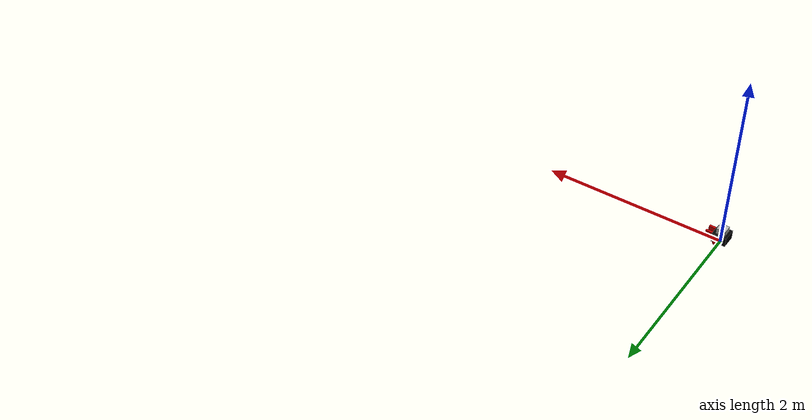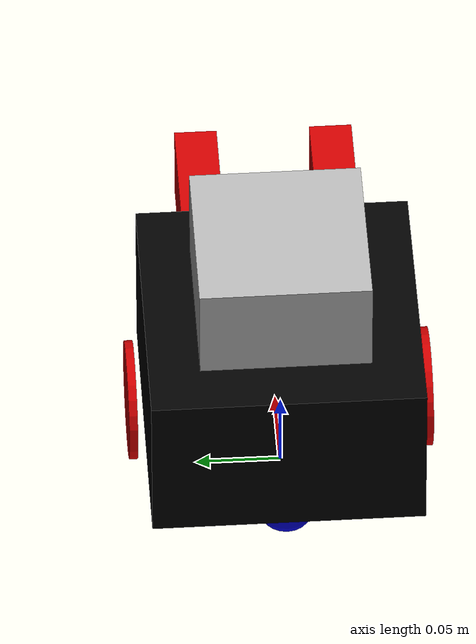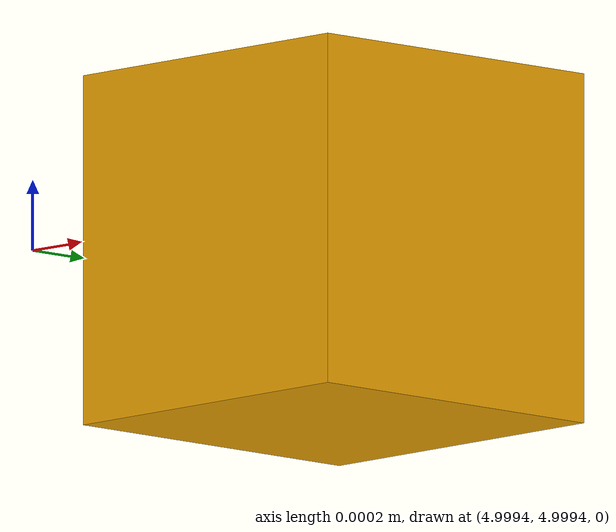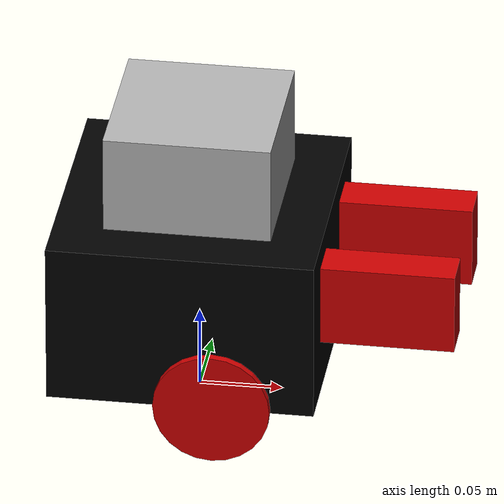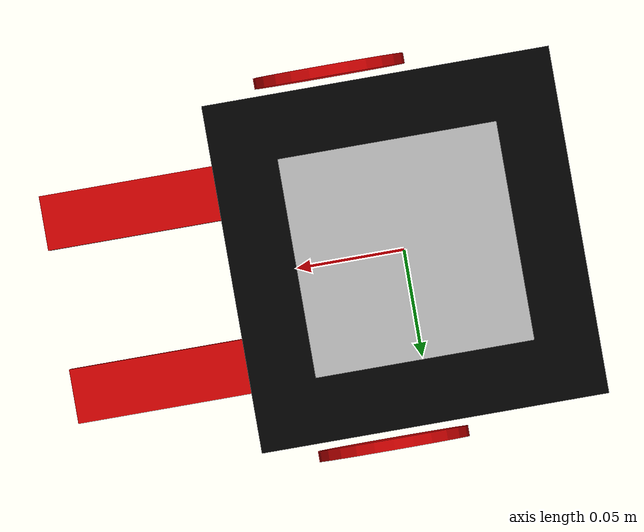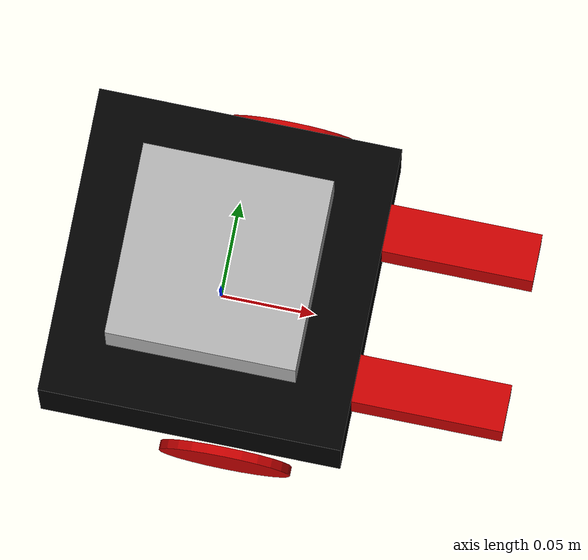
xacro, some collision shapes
<?xml version="1.0"?>
<robot xmlns:xacro="http://www.ros.org/wiki/xacro" name="define">

  <xacro:property name="base_width" value="0.16"/>
  <xacro:property name="base_len" value="0.16"/>
  <xacro:property name="wheel_radius" value="0.035"/>
  <xacro:property name="base_wheel_gap" value="0.007"/>
  <xacro:property name="wheel_separation" value="0.15"/>
  <xacro:property name="wheel_joint_offset" value="0.02"/>

  <xacro:property name="caster_wheel_radius" value="${wheel_radius/2}"/>
  <xacro:property name="caster_wheel_mass" value="0.001"/>
  <xacro:property name="caster_wheel_joint_offset" value="-0.052"/>

  <xacro:property name="gripper_width" value="0.025"/>
  <xacro:property name="gripper_len" value="0.1"/>
  <xacro:property name="gripper_height" value="0.05"/>

  <!--Color Properties-->
  <material name="blue">
    <color rgba="0 0 0.8 1"/>
  </material>
  <material name="black">
    <color rgba="0 0 0 1"/>
  </material>
  <material name="white">
    <color rgba="1 1 1 1"/>
  </material>
  <material name="red">
    <color rgba="0.8 0.0 0.0 1.0"/>
  </material>

    <!--gazebo Properties-->
  <gazebo reference="base_link">
    <material>Gazebo/Black</material>
  </gazebo>
  <gazebo reference="left_wheel">
    <mu1>0.2</mu1>
    <material>Gazebo/Red</material>
  </gazebo>
  <gazebo reference="right_wheel">
    <mu1>0.2</mu1>
    <material>Gazebo/Red</material>
  </gazebo>
  <gazebo reference="caster_wheel">
    <mu1>0.1</mu1>
    <material>Gazebo/Blue</material>
  </gazebo>
  <gazebo reference="left_end_effector">
    <material>Gazebo/Red</material>
  </gazebo>
  <gazebo reference="right_end_effector">
    <material>Gazebo/Red</material>
  </gazebo>

<!--Plugin dif_drive-->
  <gazebo>
  <plugin name="differential_drive_controller" filename="libgazebo_ros_diff_drive.so">
    <alwaysOn>false</alwaysOn>
    <torque>5</torque>
    <rosDebugLevel>na</rosDebugLevel>
    <publishTf>1</publishTf>
    <!-- Plugin update rate in Hz -->
    <updateRate>40</updateRate>
    <!-- Name of left joint, defaults to `left_joint` -->
    <leftJoint>left_wheel_joint</leftJoint>
    <!-- Name of right joint, defaults to `right_joint` -->
    <rightJoint>right_wheel_joint</rightJoint>
    <!-- The distance from the center of one wheel to the other, in meters, defaults to 0.34 m -->
    <wheelSeparation>0.087</wheelSeparation>
    <!-- Diameter of the wheels, in meters, defaults to 0.15 m -->
    <wheelDiameter>0.035</wheelDiameter>
    <!-- Wheel acceleration, in rad/s^2, defaults to 0.0 rad/s^2 -->
    <wheelAcceleration>1.0</wheelAcceleration>
    <!-- Maximum torque which the wheels can produce, in Nm, defaults to 5 Nm -->
    <wheelTorque>20</wheelTorque>
    <!-- Topic to receive geometry_msgs/Twist message commands, defaults to `cmd_vel` -->
    <commandTopic>/cmd_vel</commandTopic>
    <!-- Topic to publish nav_msgs/Odometry messages, defaults to `odom` -->
    <odometryTopic>/odom</odometryTopic>
    <!-- Odometry frame, defaults to `odom` -->
    <odometryFrame>odom</odometryFrame>
    <!-- Robot frame to calculate odometry from, defaults to `base_footprint` -->
    <robotBaseFrame>base_footprint</robotBaseFrame>
    <!-- Odometry source, 0 for ENCODER, 1 for WORLD, defaults to WORLD -->
    <odometrySource>world</odometrySource>
    <!-- Set to true to publish transforms for the wheel links, defaults to false -->
    <publishWheelTF>false</publishWheelTF>
    <!-- Set to true to publish transforms for the odometry, defaults to true -->
    <publishOdomTF>true</publishOdomTF>
    <!-- Set to true to publish sensor_msgs/JointState on /joint_states for the wheel joints, defaults to false -->
    <publishWheelJointState>false</publishWheelJointState>
    <!-- Set to true to swap right and left wheels, defaults to true -->
    <legacyMode>false</legacyMode>
  </plugin>
</gazebo>

<!-- hokuyo -->
  <gazebo reference="hokuyo_link">
    <sensor type="ray" name="head_hokuyo_sensor">
      <pose>0 0 0 0 0 0</pose>
      <visualize>true</visualize>
      <update_rate>40</update_rate>
      <ray>
        <scan>
          <horizontal>
            <samples>720</samples>
            <resolution>1</resolution>
            <min_angle>-3.14</min_angle>
            <max_angle>3.14</max_angle>
          </horizontal>
        </scan>
        <range>
          <min>0.10</min>
          <max>30.0</max>
          <resolution>0.01</resolution>
        </range>
        <noise>
          <type>gaussian</type>
          <mean>0.0</mean>
          <stddev>0.01</stddev>
        </noise>
      </ray>
      <plugin name="gazebo_ros_head_hokuyo_controller" filename="libgazebo_ros_laser.so">
        <topicName>/scan</topicName>
        <frameName>hokuyo_link</frameName>
      </plugin>
    </sensor>
  </gazebo>

  <!--Interial macros-->
  <xacro:macro name="cylinder_inertia" params="m r h">
    <inertial>
      <mass value="${m}"/>
      <inertia ixx="${m*(3*r*r+h*h)/12}" ixy = "0" ixz = "0" iyy="${m*(3*r*r+h*h)/12}" iyz = "0" izz="${m*r*r/2}"/>
    </inertial>
  </xacro:macro>

  <xacro:macro name="box_inertia" params="m w h d">
    <inertial>
      <mass value="${m}"/>
      <inertia ixx="${m / 12.0 * (d*d + h*h)}" ixy="0.0" ixz="0.0" iyy="${m / 12.0 * (w*w + h*h)}" iyz="0.0" izz="${m / 12.0 * (w*w + d*d)}"/>
    </inertial>
  </xacro:macro>

  <xacro:macro name="sphere_inertia" params="m r">
    <inertial>
      <mass value="${m}"/>
      <inertia ixx="${2.0*m*(r*r)/5.0}" ixy="0.0" ixz="0.0" iyy="${2.0*m*(r*r)/5.0}" iyz="0.0" izz="${2.0*m*(r*r)/5.0}"/>
    </inertial>
  </xacro:macro>

  <!--Base Footprint-->
  <link name="base_footprint">
    <!--xacro:box_inertia m="0" w="0.0" h="0.0" d="0.0"/-->
    <visual>
        <origin xyz="5 5 0" rpy="0 0 0" />
        <geometry>
            <box size="0.001 0.001 0.001" />
        </geometry>
    </visual>
  </link>

  <!--Base link-->
  <link name="base_link">
    <xacro:box_inertia m="1" w="${base_len}" h="0.1" d="0.01"/>
    <visual>
      <origin xyz="0 0 0.04" rpy="0 0 0" />
      <geometry>
        <box size="${base_len} ${base_width} 0.1"/> <!--lenght width height-->
      </geometry>
      <material name="black"/>
    </visual>
    <collision>
      <geometry>
        <box size="${base_len} ${base_width} 0.01"/>
      </geometry>
    </collision>
  </link>

  <!--base_link to base_footprint Joint-->
  <joint name="base_link_joint" type="fixed">
    <origin xyz="0 0 ${wheel_radius + 0.005}" rpy="0 0 0" />
    <parent link="base_footprint"/>
    <child link="base_link" />
  </joint>

  <!--end effector link & joint macro-->
  <xacro:macro name="end_effector" params="prefix reflect">
    <link name="${prefix}_end_effector">
      <visual>
        <origin xyz="0 0 0"/>
        <geometry>
          <box size="${gripper_len} ${gripper_width} ${gripper_height}"/>
        </geometry>
        <material name="red"/>
      </visual>
      <collision>
        <origin xyz="0 0 0"/>
        <geometry>
          <box size="${gripper_len} ${gripper_width} ${gripper_height}"/>
        </geometry>
      </collision>
      <xacro:box_inertia m="0.001" w="${gripper_len}" h="${gripper_height}" d="${gripper_width}"/>
    </link>

    <joint name="${prefix}_end_effector_joint" type="prismatic">
      <axis xyz="0 1 0"/>
      <parent link="base_link"/>
      <child link="${prefix}_end_effector"/>
      <origin xyz="${base_len-0.05} ${base_width/4*reflect} 0.05"/>
       <limit effort="50" velocity="1.0" lower="-0.08" upper="0.08" />
    </joint>
  </xacro:macro>

  <!--Create Left & Right Wheel links/joints-->
  <xacro:end_effector prefix="left" reflect="1"/>
  <xacro:end_effector prefix="right" reflect="-1"/>

  <!--Wheel link & joint macro-->
  <xacro:macro name="wheel" params="prefix reflect">
    <link name="${prefix}_wheel">
      <visual>
        <origin xyz="0 0 0" rpy="${pi/2} 0 0"/>
        <geometry>
          <cylinder radius="${wheel_radius}" length="0.005"/>
        </geometry>
        <material name="red"/>
      </visual>
      <collision>
        <origin xyz="0 0 0" rpy="${pi/2} 0 0"/>
        <geometry>
          <cylinder radius="${wheel_radius}" length="0.005"/>
        </geometry>
      </collision>
      <xacro:cylinder_inertia m="1" r="${wheel_radius}" h="0.005"/>
    </link>

    <joint name="${prefix}_wheel_joint" type="continuous">
      <axis xyz="0 1 0" rpy="0 0 0" />
      <parent link="base_link"/>
      <child link="${prefix}_wheel"/>
      <origin xyz="${wheel_joint_offset} ${((base_width/2)+base_wheel_gap)*reflect} -0.005" rpy="0 0 0"/>
    </joint>
  </xacro:macro>

  <!--Create Left & Right Wheel links/joints-->
  <xacro:wheel prefix="left" reflect="1"/>
  <xacro:wheel prefix="right" reflect="-1"/>

  <!--Caster Wheel Link-->
  <link name="caster_wheel">
    <visual>
      <origin xyz="0 0 0" rpy="0 0 0"/>
      <geometry>
        <sphere radius="${caster_wheel_radius}"/>
      </geometry>
      <material name="blue"/>
    </visual>
    <collision>
      <origin xyz="0 0 0" rpy="0 0 0"/>
      <geometry>
        <sphere radius="${caster_wheel_radius}"/>
      </geometry>
    </collision>
    <xacro:sphere_inertia m="1" r="${caster_wheel_radius}"/>
  </link>

  <!--Caster Wheel Joint-->
  <joint name="caster_wheel_joint" type="continuous">
    <axis xyz="0 1 0" rpy="0 0 0" />
    <parent link="base_link"/>
    <child link="caster_wheel"/>
    <origin xyz="${caster_wheel_joint_offset} 0 -${caster_wheel_radius+0.005}" rpy="0 0 0"/>
  </joint>

  <joint name="hokuyo_joint" type="fixed">
    <axis xyz="0 1 0" />
    <origin xyz="0 0 0.1" rpy="0 0 0"/>
    <parent link="base_link"/>
    <child link="hokuyo_link"/>
  </joint>

  <!-- Hokuyo Laser -->
  <link name="hokuyo_link">
    <collision>
      <origin xyz="0 0 0" rpy="0 0 0"/>
      <geometry>
    <box size="0.1 0.1 0.1"/>
      </geometry>
    </collision>

    <visual>
      <origin xyz="0 0 0" rpy="0 0 0"/>
      <geometry>
        <mesh filename="package://project_sim/meshes/hokuyo.dae"/>
      </geometry>
    </visual>

    <inertial>
      <mass value="1e-5" />
      <origin xyz="0 0 0" rpy="0 0 0"/>
      <inertia ixx="1e-6" ixy="0" ixz="0" iyy="1e-6" iyz="0" izz="1e-6" />
    </inertial>
  </link>
</robot>
